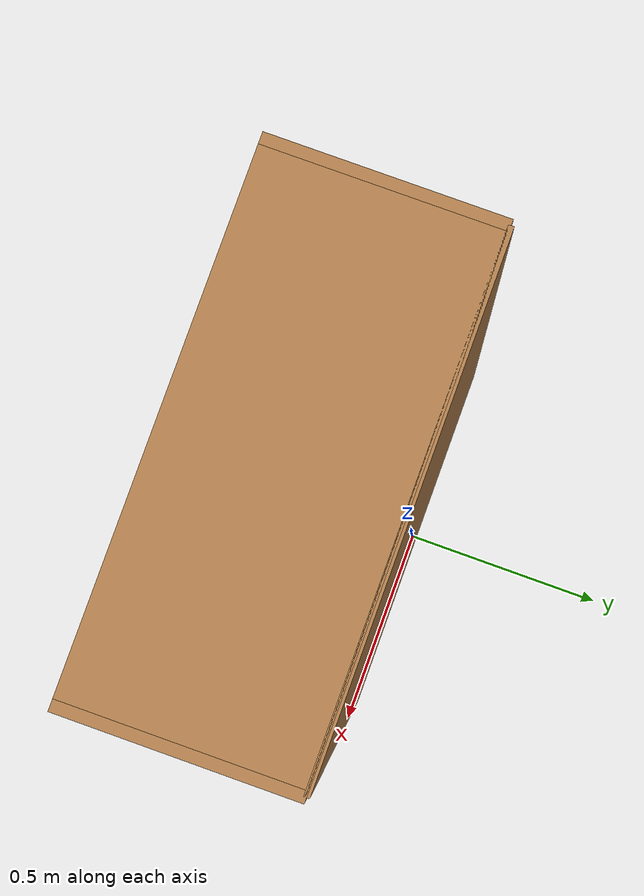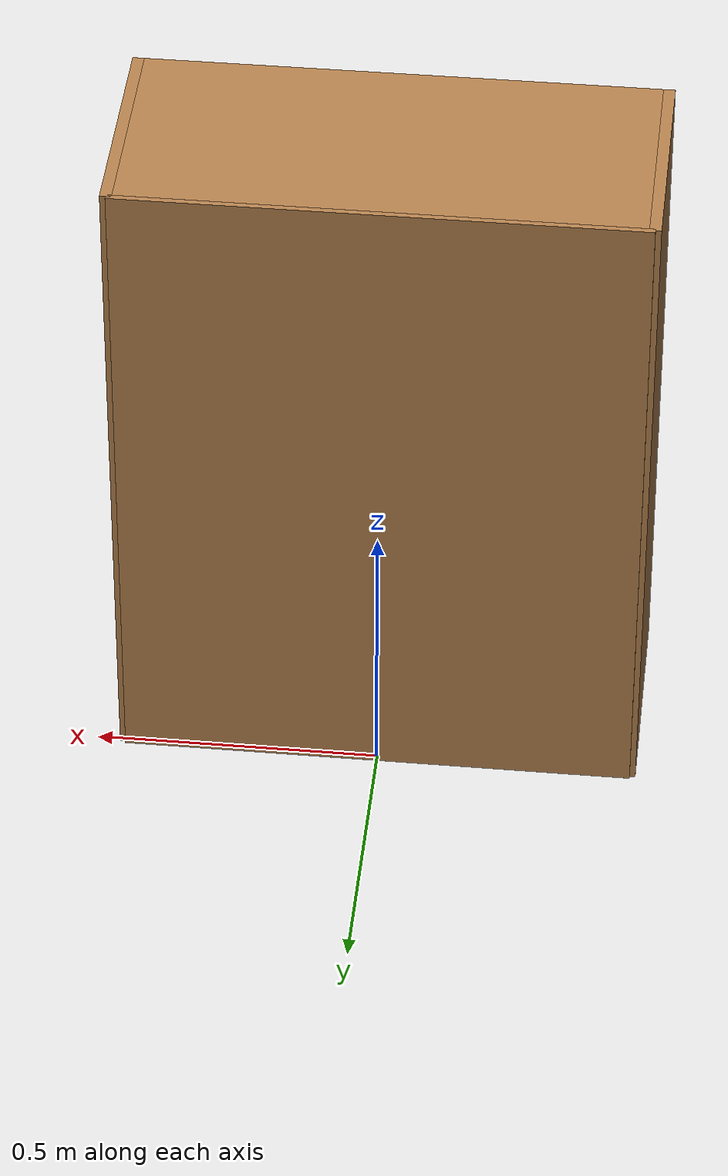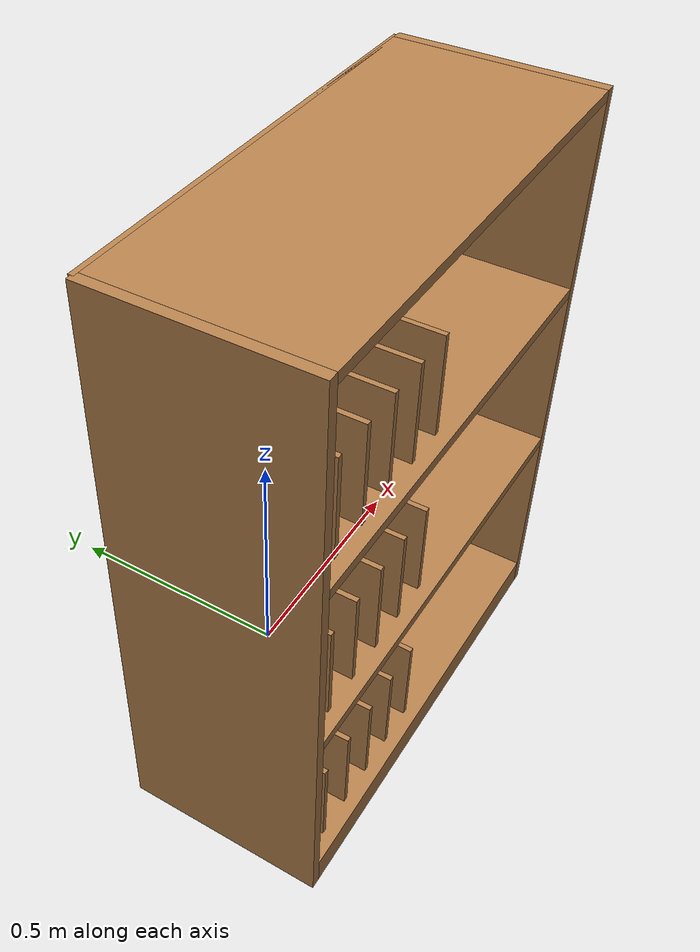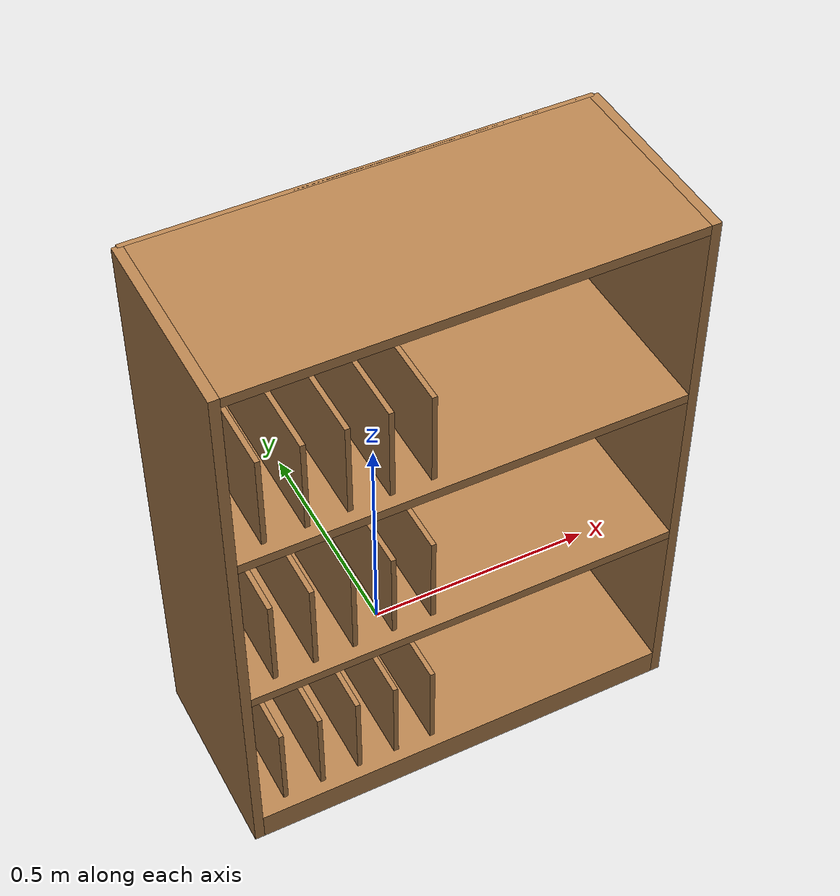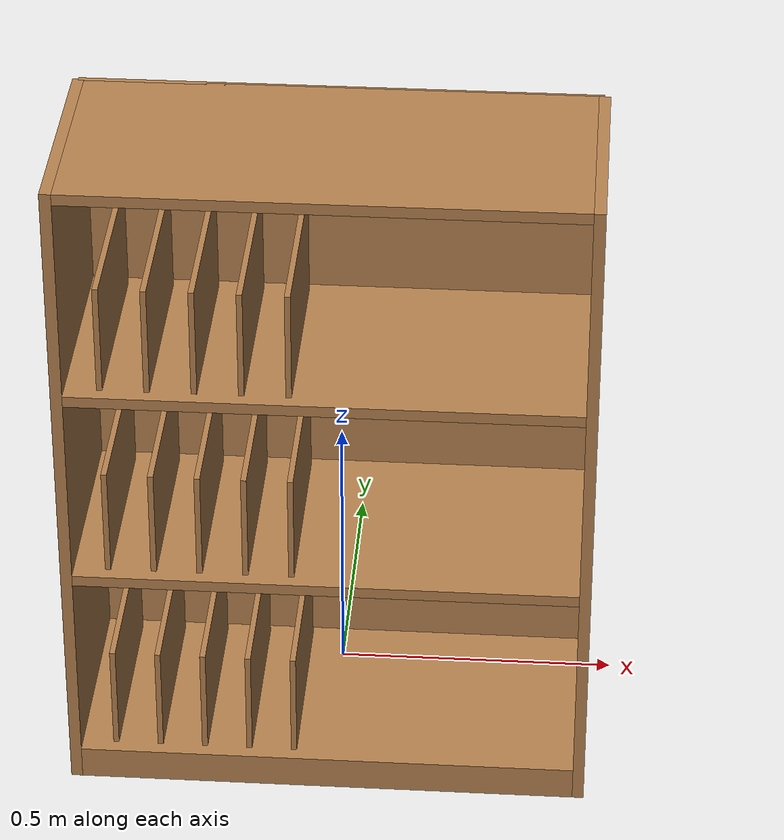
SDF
<sdf version="1.7">
 <model name="bookshelf">
  <link name="link">
   <inertial><mass>1</mass></inertial>
   <visual name="visual1">
    <pose>0 0.005 0.6 0 -0 0</pose>
    <geometry><box><size>0.9 0.01 1.2</size></box></geometry>
    <material>
     <script><uri>file://media/materials/scripts/gazebo.material</uri><name>Gazebo/Wood</name></script>
     <shader type="pixel"/>
    </material>
   </visual>
   <visual name="visual7">
    <pose>0 -0.195 0.8 0 -0 0</pose>
    <geometry><box><size>0.88 0.4 0.02</size></box></geometry>
    <material>
     <script><uri>file://media/materials/scripts/gazebo.material</uri><name>Gazebo/Wood</name></script>
     <shader type="pixel"/>
    </material>
   </visual>
   <visual name="visual5">
    <pose>0 -0.195 1.19 0 -0 0</pose>
    <geometry><box><size>0.88 0.4 0.02</size></box></geometry>
    <material>
     <script><uri>file://media/materials/scripts/gazebo.material</uri><name>Gazebo/Wood</name></script>
     <shader type="pixel"/>
    </material>
   </visual>
   <visual name="visual6">
    <pose>0 -0.195 0.43 0 -0 0</pose>
    <geometry><box><size>0.88 0.4 0.02</size></box></geometry>
    <material>
     <script><uri>file://media/materials/scripts/gazebo.material</uri><name>Gazebo/Wood</name></script>
     <shader type="pixel"/>
    </material>
   </visual>
   <visual name="visual3">
    <pose>-0.45 -0.195 0.6 0 -0 0</pose>
    <geometry><box><size>0.02 0.4 1.2</size></box></geometry>
    <material>
     <script><uri>file://media/materials/scripts/gazebo.material</uri><name>Gazebo/Wood</name></script>
     <shader type="pixel"/>
    </material>
   </visual>
   <visual name="visual2">
    <pose>0.45 -0.195 0.6 0 -0 0</pose>
    <geometry><box><size>0.02 0.4 1.2</size></box></geometry>
    <material>
     <script><uri>file://media/materials/scripts/gazebo.material</uri><name>Gazebo/Wood</name></script>
     <shader type="pixel"/>
    </material>
   </visual>
   <visual name="visual4">
    <pose>0 -0.195 0.03 0 -0 0</pose>
    <geometry><box><size>0.88 0.4 0.06</size></box></geometry>
    <material>
     <script><uri>file://media/materials/scripts/gazebo.material</uri><name>Gazebo/Wood</name></script>
     <shader type="pixel"/>
    </material>
   </visual>
   <collision name="back">
    <pose>0 0.005 0.6 0 -0 0</pose>
    <geometry><box><size>0.9 0.01 1.2</size></box></geometry>
    <surface>
     <friction>
      <ode><mu>1</mu><mu2>1</mu2><fdir1>0 0 0</fdir1><slip1>0</slip1><slip2>0</slip2></ode>
      <torsional>
       <coefficient>1</coefficient>
       <patch_radius>0</patch_radius>
       <surface_radius>0</surface_radius>
       <use_patch_radius>1</use_patch_radius>
       <ode><slip>0</slip></ode>
      </torsional>
     </friction>
     <bounce><restitution_coefficient>0</restitution_coefficient><threshold>1e+06</threshold></bounce>
     <contact>
      <collide_without_contact>0</collide_without_contact>
      <collide_without_contact_bitmask>1</collide_without_contact_bitmask>
      <collide_bitmask>1</collide_bitmask>
      <ode>
       <soft_cfm>0</soft_cfm>
       <soft_erp>0.2</soft_erp>
       <kp>1e+13</kp>
       <kd>1</kd>
       <max_vel>0.01</max_vel>
       <min_depth>0</min_depth>
      </ode>
      <bullet>
       <split_impulse>1</split_impulse>
       <split_impulse_penetration_threshold>-0.01</split_impulse_penetration_threshold>
       <soft_cfm>0</soft_cfm>
       <soft_erp>0.2</soft_erp>
       <kp>1e+13</kp>
       <kd>1</kd>
      </bullet>
     </contact>
    </surface>
   </collision>
   <collision name="right_side">
    <pose>-0.45 -0.195 0.6 0 -0 0</pose>
    <geometry><box><size>0.02 0.4 1.2</size></box></geometry>
    <surface>
     <friction>
      <ode><mu>1</mu><mu2>1</mu2><fdir1>0 0 0</fdir1><slip1>0</slip1><slip2>0</slip2></ode>
      <torsional>
       <coefficient>1</coefficient>
       <patch_radius>0</patch_radius>
       <surface_radius>0</surface_radius>
       <use_patch_radius>1</use_patch_radius>
       <ode><slip>0</slip></ode>
      </torsional>
     </friction>
     <bounce><restitution_coefficient>0</restitution_coefficient><threshold>1e+06</threshold></bounce>
     <contact>
      <collide_without_contact>0</collide_without_contact>
      <collide_without_contact_bitmask>1</collide_without_contact_bitmask>
      <collide_bitmask>1</collide_bitmask>
      <ode>
       <soft_cfm>0</soft_cfm>
       <soft_erp>0.2</soft_erp>
       <kp>1e+13</kp>
       <kd>1</kd>
       <max_vel>0.01</max_vel>
       <min_depth>0</min_depth>
      </ode>
      <bullet>
       <split_impulse>1</split_impulse>
       <split_impulse_penetration_threshold>-0.01</split_impulse_penetration_threshold>
       <soft_cfm>0</soft_cfm>
       <soft_erp>0.2</soft_erp>
       <kp>1e+13</kp>
       <kd>1</kd>
      </bullet>
     </contact>
    </surface>
   </collision>
   <collision name="left_side">
    <pose>0.45 -0.195 0.6 0 -0 0</pose>
    <geometry><box><size>0.02 0.4 1.2</size></box></geometry>
    <surface>
     <friction>
      <ode><mu>1</mu><mu2>1</mu2><fdir1>0 0 0</fdir1><slip1>0</slip1><slip2>0</slip2></ode>
      <torsional>
       <coefficient>1</coefficient>
       <patch_radius>0</patch_radius>
       <surface_radius>0</surface_radius>
       <use_patch_radius>1</use_patch_radius>
       <ode><slip>0</slip></ode>
      </torsional>
     </friction>
     <bounce><restitution_coefficient>0</restitution_coefficient><threshold>1e+06</threshold></bounce>
     <contact>
      <collide_without_contact>0</collide_without_contact>
      <collide_without_contact_bitmask>1</collide_without_contact_bitmask>
      <collide_bitmask>1</collide_bitmask>
      <ode>
       <soft_cfm>0</soft_cfm>
       <soft_erp>0.2</soft_erp>
       <kp>1e+13</kp>
       <kd>1</kd>
       <max_vel>0.01</max_vel>
       <min_depth>0</min_depth>
      </ode>
      <bullet>
       <split_impulse>1</split_impulse>
       <split_impulse_penetration_threshold>-0.01</split_impulse_penetration_threshold>
       <soft_cfm>0</soft_cfm>
       <soft_erp>0.2</soft_erp>
       <kp>1e+13</kp>
       <kd>1</kd>
      </bullet>
     </contact>
    </surface>
   </collision>
   <collision name="high_shelf">
    <pose>0 -0.195 0.8 0 -0 0</pose>
    <geometry><box><size>0.88 0.4 0.02</size></box></geometry>
    <surface>
     <friction>
      <ode><mu>1</mu><mu2>1</mu2><fdir1>0 0 0</fdir1><slip1>0</slip1><slip2>0</slip2></ode>
      <torsional>
       <coefficient>1</coefficient>
       <patch_radius>0</patch_radius>
       <surface_radius>0</surface_radius>
       <use_patch_radius>1</use_patch_radius>
       <ode><slip>0</slip></ode>
      </torsional>
     </friction>
     <bounce><restitution_coefficient>0</restitution_coefficient><threshold>1e+06</threshold></bounce>
     <contact>
      <collide_without_contact>0</collide_without_contact>
      <collide_without_contact_bitmask>1</collide_without_contact_bitmask>
      <collide_bitmask>1</collide_bitmask>
      <ode>
       <soft_cfm>0</soft_cfm>
       <soft_erp>0.2</soft_erp>
       <kp>1e+13</kp>
       <kd>1</kd>
       <max_vel>0.01</max_vel>
       <min_depth>0</min_depth>
      </ode>
      <bullet>
       <split_impulse>1</split_impulse>
       <split_impulse_penetration_threshold>-0.01</split_impulse_penetration_threshold>
       <soft_cfm>0</soft_cfm>
       <soft_erp>0.2</soft_erp>
       <kp>1e+13</kp>
       <kd>1</kd>
      </bullet>
     </contact>
    </surface>
   </collision>
   <collision name="bottom">
    <pose>0 -0.195 0.03 0 -0 0</pose>
    <geometry><box><size>0.88 0.4 0.06</size></box></geometry>
    <surface>
     <friction>
      <ode><mu>1</mu><mu2>1</mu2><fdir1>0 0 0</fdir1><slip1>0</slip1><slip2>0</slip2></ode>
      <torsional>
       <coefficient>1</coefficient>
       <patch_radius>0</patch_radius>
       <surface_radius>0</surface_radius>
       <use_patch_radius>1</use_patch_radius>
       <ode><slip>0</slip></ode>
      </torsional>
     </friction>
     <bounce><restitution_coefficient>0</restitution_coefficient><threshold>1e+06</threshold></bounce>
     <contact>
      <collide_without_contact>0</collide_without_contact>
      <collide_without_contact_bitmask>1</collide_without_contact_bitmask>
      <collide_bitmask>1</collide_bitmask>
      <ode>
       <soft_cfm>0</soft_cfm>
       <soft_erp>0.2</soft_erp>
       <kp>1e+13</kp>
       <kd>1</kd>
       <max_vel>0.01</max_vel>
       <min_depth>0</min_depth>
      </ode>
      <bullet>
       <split_impulse>1</split_impulse>
       <split_impulse_penetration_threshold>-0.01</split_impulse_penetration_threshold>
       <soft_cfm>0</soft_cfm>
       <soft_erp>0.2</soft_erp>
       <kp>1e+13</kp>
       <kd>1</kd>
      </bullet>
     </contact>
    </surface>
   </collision>
   <collision name="top">
    <pose>0 -0.195 1.19 0 -0 0</pose>
    <geometry><box><size>0.88 0.4 0.02</size></box></geometry>
    <surface>
     <friction>
      <ode><mu>1</mu><mu2>1</mu2><fdir1>0 0 0</fdir1><slip1>0</slip1><slip2>0</slip2></ode>
      <torsional>
       <coefficient>1</coefficient>
       <patch_radius>0</patch_radius>
       <surface_radius>0</surface_radius>
       <use_patch_radius>1</use_patch_radius>
       <ode><slip>0</slip></ode>
      </torsional>
     </friction>
     <bounce><restitution_coefficient>0</restitution_coefficient><threshold>1e+06</threshold></bounce>
     <contact>
      <collide_without_contact>0</collide_without_contact>
      <collide_without_contact_bitmask>1</collide_without_contact_bitmask>
      <collide_bitmask>1</collide_bitmask>
      <ode>
       <soft_cfm>0</soft_cfm>
       <soft_erp>0.2</soft_erp>
       <kp>1e+13</kp>
       <kd>1</kd>
       <max_vel>0.01</max_vel>
       <min_depth>0</min_depth>
      </ode>
      <bullet>
       <split_impulse>1</split_impulse>
       <split_impulse_penetration_threshold>-0.01</split_impulse_penetration_threshold>
       <soft_cfm>0</soft_cfm>
       <soft_erp>0.2</soft_erp>
       <kp>1e+13</kp>
       <kd>1</kd>
      </bullet>
     </contact>
    </surface>
   </collision>
   <collision name="low_shelf">
    <pose>0 -0.195 0.43 0 -0 0</pose>
    <geometry><box><size>0.88 0.4 0.02</size></box></geometry>
    <surface>
     <friction>
      <ode><mu>1</mu><mu2>1</mu2><fdir1>0 0 0</fdir1><slip1>0</slip1><slip2>0</slip2></ode>
      <torsional>
       <coefficient>1</coefficient>
       <patch_radius>0</patch_radius>
       <surface_radius>0</surface_radius>
       <use_patch_radius>1</use_patch_radius>
       <ode><slip>0</slip></ode>
      </torsional>
     </friction>
     <bounce><restitution_coefficient>0</restitution_coefficient><threshold>1e+06</threshold></bounce>
     <contact>
      <collide_without_contact>0</collide_without_contact>
      <collide_without_contact_bitmask>1</collide_without_contact_bitmask>
      <collide_bitmask>1</collide_bitmask>
      <ode>
       <soft_cfm>0</soft_cfm>
       <soft_erp>0.2</soft_erp>
       <kp>1e+13</kp>
       <kd>1</kd>
       <max_vel>0.01</max_vel>
       <min_depth>0</min_depth>
      </ode>
      <bullet>
       <split_impulse>1</split_impulse>
       <split_impulse_penetration_threshold>-0.01</split_impulse_penetration_threshold>
       <soft_cfm>0</soft_cfm>
       <soft_erp>0.2</soft_erp>
       <kp>1e+13</kp>
       <kd>1</kd>
      </bullet>
     </contact>
    </surface>
   </collision>
  </link>
  <link name="link_1">
   <inertial>
    <mass>1</mass>
    <inertia>
     <ixx>0.166667</ixx>
     <ixy>0</ixy>
     <ixz>0</ixz>
     <iyy>0.166667</iyy>
     <iyz>0</iyz>
     <izz>0.166667</izz>
    </inertia>
   </inertial>
   <pose>-0.38 -0.195 0.907998 0 0 -1.57</pose>
   <visual name="visual">
    <geometry><box><size>0.35 0.01 0.2</size></box></geometry>
    <material>
     <script><uri>file://media/materials/scripts/gazebo.material</uri><name>Gazebo/Wood</name></script>
     <shader type="pixel"/>
    </material>
   </visual>
   <visual name="ModelPreview_3::link_1::visual_1">
    <geometry><box><size>0.35 0.01 0.2</size></box></geometry>
    <material>
     <lighting>1</lighting>
     <script><uri>file://media/materials/scripts/gazebo.material</uri><name>Gazebo/Grey</name></script>
     <shader type="pixel"><normal_map>__default__</normal_map></shader>
     <ambient>0.3 0.3 0.3 1</ambient>
     <diffuse>0.7 0.7 0.7 1</diffuse>
     <specular>0.01 0.01 0.01 1</specular>
     <emissive>0 0 0 1</emissive>
    </material>
   </visual>
   <collision name="collision">
    <geometry><box><size>0.35 0.01 0.2</size></box></geometry>
    <surface>
     <friction>
      <ode><mu>1</mu><mu2>1</mu2><fdir1>0 0 0</fdir1><slip1>0</slip1><slip2>0</slip2></ode>
      <torsional>
       <coefficient>1</coefficient>
       <patch_radius>0</patch_radius>
       <surface_radius>0</surface_radius>
       <use_patch_radius>1</use_patch_radius>
       <ode><slip>0</slip></ode>
      </torsional>
     </friction>
     <bounce><restitution_coefficient>0</restitution_coefficient><threshold>1e+06</threshold></bounce>
     <contact>
      <collide_without_contact>0</collide_without_contact>
      <collide_without_contact_bitmask>1</collide_without_contact_bitmask>
      <collide_bitmask>1</collide_bitmask>
      <ode>
       <soft_cfm>0</soft_cfm>
       <soft_erp>0.2</soft_erp>
       <kp>1e+13</kp>
       <kd>1</kd>
       <max_vel>0.01</max_vel>
       <min_depth>0</min_depth>
      </ode>
      <bullet>
       <split_impulse>1</split_impulse>
       <split_impulse_penetration_threshold>-0.01</split_impulse_penetration_threshold>
       <soft_cfm>0</soft_cfm>
       <soft_erp>0.2</soft_erp>
       <kp>1e+13</kp>
       <kd>1</kd>
      </bullet>
     </contact>
    </surface>
   </collision>
  </link>
  <link name="link_2">
   <inertial>
    <mass>1</mass>
    <inertia>
     <ixx>0.166667</ixx>
     <ixy>0</ixy>
     <ixz>0</ixz>
     <iyy>0.166667</iyy>
     <iyz>0</iyz>
     <izz>0.166667</izz>
    </inertia>
   </inertial>
   <pose>-0.3 -0.195 0.907998 0 0 -1.57</pose>
   <visual name="visual">
    <geometry><box><size>0.35 0.01 0.2</size></box></geometry>
    <material>
     <script><uri>file://media/materials/scripts/gazebo.material</uri><name>Gazebo/Wood</name></script>
     <shader type="pixel"/>
    </material>
   </visual>
   <visual name="ModelPreview_3::link_1::visual_1">
    <geometry><box><size>0.35 0.01 0.2</size></box></geometry>
    <material>
     <lighting>1</lighting>
     <script><uri>file://media/materials/scripts/gazebo.material</uri><name>Gazebo/Grey</name></script>
     <shader type="pixel"><normal_map>__default__</normal_map></shader>
     <ambient>0.3 0.3 0.3 1</ambient>
     <diffuse>0.7 0.7 0.7 1</diffuse>
     <specular>0.01 0.01 0.01 1</specular>
     <emissive>0 0 0 1</emissive>
    </material>
   </visual>
   <collision name="collision">
    <geometry><box><size>0.35 0.01 0.2</size></box></geometry>
    <surface>
     <friction>
      <ode><mu>1</mu><mu2>1</mu2><fdir1>0 0 0</fdir1><slip1>0</slip1><slip2>0</slip2></ode>
      <torsional>
       <coefficient>1</coefficient>
       <patch_radius>0</patch_radius>
       <surface_radius>0</surface_radius>
       <use_patch_radius>1</use_patch_radius>
       <ode><slip>0</slip></ode>
      </torsional>
     </friction>
     <bounce><restitution_coefficient>0</restitution_coefficient><threshold>1e+06</threshold></bounce>
     <contact>
      <collide_without_contact>0</collide_without_contact>
      <collide_without_contact_bitmask>1</collide_without_contact_bitmask>
      <collide_bitmask>1</collide_bitmask>
      <ode>
       <soft_cfm>0</soft_cfm>
       <soft_erp>0.2</soft_erp>
       <kp>1e+13</kp>
       <kd>1</kd>
       <max_vel>0.01</max_vel>
       <min_depth>0</min_depth>
      </ode>
      <bullet>
       <split_impulse>1</split_impulse>
       <split_impulse_penetration_threshold>-0.01</split_impulse_penetration_threshold>
       <soft_cfm>0</soft_cfm>
       <soft_erp>0.2</soft_erp>
       <kp>1e+13</kp>
       <kd>1</kd>
      </bullet>
     </contact>
    </surface>
   </collision>
  </link>
  <link name="link_3">
   <inertial>
    <mass>1</mass>
    <inertia>
     <ixx>0.166667</ixx>
     <ixy>0</ixy>
     <ixz>0</ixz>
     <iyy>0.166667</iyy>
     <iyz>0</iyz>
     <izz>0.166667</izz>
    </inertia>
   </inertial>
   <pose>-0.22 -0.195 0.907998 0 0 -1.57</pose>
   <visual name="visual">
    <geometry><box><size>0.35 0.01 0.2</size></box></geometry>
    <material>
     <script><uri>file://media/materials/scripts/gazebo.material</uri><name>Gazebo/Wood</name></script>
     <shader type="pixel"/>
    </material>
   </visual>
   <visual name="ModelPreview_3::link_1::visual_1">
    <geometry><box><size>0.35 0.01 0.2</size></box></geometry>
    <material>
     <lighting>1</lighting>
     <script><uri>file://media/materials/scripts/gazebo.material</uri><name>Gazebo/Grey</name></script>
     <shader type="pixel"><normal_map>__default__</normal_map></shader>
     <ambient>0.3 0.3 0.3 1</ambient>
     <diffuse>0.7 0.7 0.7 1</diffuse>
     <specular>0.01 0.01 0.01 1</specular>
     <emissive>0 0 0 1</emissive>
    </material>
   </visual>
   <collision name="collision">
    <geometry><box><size>0.35 0.01 0.2</size></box></geometry>
    <surface>
     <friction>
      <ode><mu>1</mu><mu2>1</mu2><fdir1>0 0 0</fdir1><slip1>0</slip1><slip2>0</slip2></ode>
      <torsional>
       <coefficient>1</coefficient>
       <patch_radius>0</patch_radius>
       <surface_radius>0</surface_radius>
       <use_patch_radius>1</use_patch_radius>
       <ode><slip>0</slip></ode>
      </torsional>
     </friction>
     <bounce><restitution_coefficient>0</restitution_coefficient><threshold>1e+06</threshold></bounce>
     <contact>
      <collide_without_contact>0</collide_without_contact>
      <collide_without_contact_bitmask>1</collide_without_contact_bitmask>
      <collide_bitmask>1</collide_bitmask>
      <ode>
       <soft_cfm>0</soft_cfm>
       <soft_erp>0.2</soft_erp>
       <kp>1e+13</kp>
       <kd>1</kd>
       <max_vel>0.01</max_vel>
       <min_depth>0</min_depth>
      </ode>
      <bullet>
       <split_impulse>1</split_impulse>
       <split_impulse_penetration_threshold>-0.01</split_impulse_penetration_threshold>
       <soft_cfm>0</soft_cfm>
       <soft_erp>0.2</soft_erp>
       <kp>1e+13</kp>
       <kd>1</kd>
      </bullet>
     </contact>
    </surface>
   </collision>
  </link>
  <link name="link_4">
   <inertial>
    <mass>1</mass>
    <inertia>
     <ixx>0.166667</ixx>
     <ixy>0</ixy>
     <ixz>0</ixz>
     <iyy>0.166667</iyy>
     <iyz>0</iyz>
     <izz>0.166667</izz>
    </inertia>
   </inertial>
   <pose>-0.14 -0.195 0.907998 0 0 -1.57</pose>
   <visual name="visual">
    <geometry><box><size>0.35 0.01 0.2</size></box></geometry>
    <material>
     <script><uri>file://media/materials/scripts/gazebo.material</uri><name>Gazebo/Wood</name></script>
     <shader type="pixel"/>
    </material>
   </visual>
   <visual name="ModelPreview_3::link_1::visual_1">
    <geometry><box><size>0.35 0.01 0.2</size></box></geometry>
    <material>
     <lighting>1</lighting>
     <script><uri>file://media/materials/scripts/gazebo.material</uri><name>Gazebo/Grey</name></script>
     <shader type="pixel"><normal_map>__default__</normal_map></shader>
     <ambient>0.3 0.3 0.3 1</ambient>
     <diffuse>0.7 0.7 0.7 1</diffuse>
     <specular>0.01 0.01 0.01 1</specular>
     <emissive>0 0 0 1</emissive>
    </material>
   </visual>
   <collision name="collision">
    <geometry><box><size>0.35 0.01 0.2</size></box></geometry>
    <surface>
     <friction>
      <ode><mu>1</mu><mu2>1</mu2><fdir1>0 0 0</fdir1><slip1>0</slip1><slip2>0</slip2></ode>
      <torsional>
       <coefficient>1</coefficient>
       <patch_radius>0</patch_radius>
       <surface_radius>0</surface_radius>
       <use_patch_radius>1</use_patch_radius>
       <ode><slip>0</slip></ode>
      </torsional>
     </friction>
     <bounce><restitution_coefficient>0</restitution_coefficient><threshold>1e+06</threshold></bounce>
     <contact>
      <collide_without_contact>0</collide_without_contact>
      <collide_without_contact_bitmask>1</collide_without_contact_bitmask>
      <collide_bitmask>1</collide_bitmask>
      <ode>
       <soft_cfm>0</soft_cfm>
       <soft_erp>0.2</soft_erp>
       <kp>1e+13</kp>
       <kd>1</kd>
       <max_vel>0.01</max_vel>
       <min_depth>0</min_depth>
      </ode>
      <bullet>
       <split_impulse>1</split_impulse>
       <split_impulse_penetration_threshold>-0.01</split_impulse_penetration_threshold>
       <soft_cfm>0</soft_cfm>
       <soft_erp>0.2</soft_erp>
       <kp>1e+13</kp>
       <kd>1</kd>
      </bullet>
     </contact>
    </surface>
   </collision>
  </link>
  <link name="link_5">
   <inertial>
    <mass>1</mass>
    <inertia>
     <ixx>0.166667</ixx>
     <ixy>0</ixy>
     <ixz>0</ixz>
     <iyy>0.166667</iyy>
     <iyz>0</iyz>
     <izz>0.166667</izz>
    </inertia>
   </inertial>
   <pose>-0.06 -0.195 0.907998 0 0 -1.57</pose>
   <visual name="visual">
    <geometry><box><size>0.35 0.01 0.2</size></box></geometry>
    <material>
     <script><uri>file://media/materials/scripts/gazebo.material</uri><name>Gazebo/Wood</name></script>
     <shader type="pixel"/>
    </material>
   </visual>
   <visual name="ModelPreview_3::link_1::visual_1">
    <geometry><box><size>0.35 0.01 0.2</size></box></geometry>
    <material>
     <lighting>1</lighting>
     <script><uri>file://media/materials/scripts/gazebo.material</uri><name>Gazebo/Grey</name></script>
     <shader type="pixel"><normal_map>__default__</normal_map></shader>
     <ambient>0.3 0.3 0.3 1</ambient>
     <diffuse>0.7 0.7 0.7 1</diffuse>
     <specular>0.01 0.01 0.01 1</specular>
     <emissive>0 0 0 1</emissive>
    </material>
   </visual>
   <collision name="collision">
    <geometry><box><size>0.35 0.01 0.2</size></box></geometry>
    <surface>
     <friction>
      <ode><mu>1</mu><mu2>1</mu2><fdir1>0 0 0</fdir1><slip1>0</slip1><slip2>0</slip2></ode>
      <torsional>
       <coefficient>1</coefficient>
       <patch_radius>0</patch_radius>
       <surface_radius>0</surface_radius>
       <use_patch_radius>1</use_patch_radius>
       <ode><slip>0</slip></ode>
      </torsional>
     </friction>
     <bounce><restitution_coefficient>0</restitution_coefficient><threshold>1e+06</threshold></bounce>
     <contact>
      <collide_without_contact>0</collide_without_contact>
      <collide_without_contact_bitmask>1</collide_without_contact_bitmask>
      <collide_bitmask>1</collide_bitmask>
      <ode>
       <soft_cfm>0</soft_cfm>
       <soft_erp>0.2</soft_erp>
       <kp>1e+13</kp>
       <kd>1</kd>
       <max_vel>0.01</max_vel>
       <min_depth>0</min_depth>
      </ode>
      <bullet>
       <split_impulse>1</split_impulse>
       <split_impulse_penetration_threshold>-0.01</split_impulse_penetration_threshold>
       <soft_cfm>0</soft_cfm>
       <soft_erp>0.2</soft_erp>
       <kp>1e+13</kp>
       <kd>1</kd>
      </bullet>
     </contact>
    </surface>
   </collision>
  </link>
  <link name="link_2_1">
   <inertial>
    <mass>1</mass>
    <inertia>
     <ixx>0.166667</ixx>
     <ixy>0</ixy>
     <ixz>0</ixz>
     <iyy>0.166667</iyy>
     <iyz>0</iyz>
     <izz>0.166667</izz>
    </inertia>
   </inertial>
   <pose>-0.38 -0.195 0.5379 0 0 -1.57</pose>
   <visual name="visual">
    <geometry><box><size>0.35 0.01 0.2</size></box></geometry>
    <material>
     <script><uri>file://media/materials/scripts/gazebo.material</uri><name>Gazebo/Wood</name></script>
     <shader type="pixel"/>
    </material>
   </visual>
   <visual name="ModelPreview_3::link_1::visual_1">
    <geometry><box><size>0.35 0.01 0.2</size></box></geometry>
    <material>
     <lighting>1</lighting>
     <script><uri>file://media/materials/scripts/gazebo.material</uri><name>Gazebo/Grey</name></script>
     <shader type="pixel"><normal_map>__default__</normal_map></shader>
     <ambient>0.3 0.3 0.3 1</ambient>
     <diffuse>0.7 0.7 0.7 1</diffuse>
     <specular>0.01 0.01 0.01 1</specular>
     <emissive>0 0 0 1</emissive>
    </material>
   </visual>
   <collision name="collision">
    <geometry><box><size>0.35 0.01 0.2</size></box></geometry>
    <surface>
     <friction>
      <ode><mu>1</mu><mu2>1</mu2><fdir1>0 0 0</fdir1><slip1>0</slip1><slip2>0</slip2></ode>
      <torsional>
       <coefficient>1</coefficient>
       <patch_radius>0</patch_radius>
       <surface_radius>0</surface_radius>
       <use_patch_radius>1</use_patch_radius>
       <ode><slip>0</slip></ode>
      </torsional>
     </friction>
     <bounce><restitution_coefficient>0</restitution_coefficient><threshold>1e+06</threshold></bounce>
     <contact>
      <collide_without_contact>0</collide_without_contact>
      <collide_without_contact_bitmask>1</collide_without_contact_bitmask>
      <collide_bitmask>1</collide_bitmask>
      <ode>
       <soft_cfm>0</soft_cfm>
       <soft_erp>0.2</soft_erp>
       <kp>1e+13</kp>
       <kd>1</kd>
       <max_vel>0.01</max_vel>
       <min_depth>0</min_depth>
      </ode>
      <bullet>
       <split_impulse>1</split_impulse>
       <split_impulse_penetration_threshold>-0.01</split_impulse_penetration_threshold>
       <soft_cfm>0</soft_cfm>
       <soft_erp>0.2</soft_erp>
       <kp>1e+13</kp>
       <kd>1</kd>
      </bullet>
     </contact>
    </surface>
   </collision>
  </link>
  <link name="link_2_2">
   <inertial>
    <mass>1</mass>
    <inertia>
     <ixx>0.166667</ixx>
     <ixy>0</ixy>
     <ixz>0</ixz>
     <iyy>0.166667</iyy>
     <iyz>0</iyz>
     <izz>0.166667</izz>
    </inertia>
   </inertial>
   <pose>-0.3 -0.195 0.5379 0 0 -1.57</pose>
   <visual name="visual">
    <geometry><box><size>0.35 0.01 0.2</size></box></geometry>
    <material>
     <script><uri>file://media/materials/scripts/gazebo.material</uri><name>Gazebo/Wood</name></script>
     <shader type="pixel"/>
    </material>
   </visual>
   <visual name="ModelPreview_3::link_1::visual_1">
    <geometry><box><size>0.35 0.01 0.2</size></box></geometry>
    <material>
     <lighting>1</lighting>
     <script><uri>file://media/materials/scripts/gazebo.material</uri><name>Gazebo/Grey</name></script>
     <shader type="pixel"><normal_map>__default__</normal_map></shader>
     <ambient>0.3 0.3 0.3 1</ambient>
     <diffuse>0.7 0.7 0.7 1</diffuse>
     <specular>0.01 0.01 0.01 1</specular>
     <emissive>0 0 0 1</emissive>
    </material>
   </visual>
   <collision name="collision">
    <geometry><box><size>0.35 0.01 0.2</size></box></geometry>
    <surface>
     <friction>
      <ode><mu>1</mu><mu2>1</mu2><fdir1>0 0 0</fdir1><slip1>0</slip1><slip2>0</slip2></ode>
      <torsional>
       <coefficient>1</coefficient>
       <patch_radius>0</patch_radius>
       <surface_radius>0</surface_radius>
       <use_patch_radius>1</use_patch_radius>
       <ode><slip>0</slip></ode>
      </torsional>
     </friction>
     <bounce><restitution_coefficient>0</restitution_coefficient><threshold>1e+06</threshold></bounce>
     <contact>
      <collide_without_contact>0</collide_without_contact>
      <collide_without_contact_bitmask>1</collide_without_contact_bitmask>
      <collide_bitmask>1</collide_bitmask>
      <ode>
       <soft_cfm>0</soft_cfm>
       <soft_erp>0.2</soft_erp>
       <kp>1e+13</kp>
       <kd>1</kd>
       <max_vel>0.01</max_vel>
       <min_depth>0</min_depth>
      </ode>
      <bullet>
       <split_impulse>1</split_impulse>
       <split_impulse_penetration_threshold>-0.01</split_impulse_penetration_threshold>
       <soft_cfm>0</soft_cfm>
       <soft_erp>0.2</soft_erp>
       <kp>1e+13</kp>
       <kd>1</kd>
      </bullet>
     </contact>
    </surface>
   </collision>
  </link>
  <link name="link_2_3">
   <inertial>
    <mass>1</mass>
    <inertia>
     <ixx>0.166667</ixx>
     <ixy>0</ixy>
     <ixz>0</ixz>
     <iyy>0.166667</iyy>
     <iyz>0</iyz>
     <izz>0.166667</izz>
    </inertia>
   </inertial>
   <pose>-0.22 -0.195 0.5379 0 0 -1.57</pose>
   <visual name="visual">
    <geometry><box><size>0.35 0.01 0.2</size></box></geometry>
    <material>
     <script><uri>file://media/materials/scripts/gazebo.material</uri><name>Gazebo/Wood</name></script>
     <shader type="pixel"/>
    </material>
   </visual>
   <visual name="ModelPreview_3::link_1::visual_1">
    <geometry><box><size>0.35 0.01 0.2</size></box></geometry>
    <material>
     <lighting>1</lighting>
     <script><uri>file://media/materials/scripts/gazebo.material</uri><name>Gazebo/Grey</name></script>
     <shader type="pixel"><normal_map>__default__</normal_map></shader>
     <ambient>0.3 0.3 0.3 1</ambient>
     <diffuse>0.7 0.7 0.7 1</diffuse>
     <specular>0.01 0.01 0.01 1</specular>
     <emissive>0 0 0 1</emissive>
    </material>
   </visual>
   <collision name="collision">
    <geometry><box><size>0.35 0.01 0.2</size></box></geometry>
    <surface>
     <friction>
      <ode><mu>1</mu><mu2>1</mu2><fdir1>0 0 0</fdir1><slip1>0</slip1><slip2>0</slip2></ode>
      <torsional>
       <coefficient>1</coefficient>
       <patch_radius>0</patch_radius>
       <surface_radius>0</surface_radius>
       <use_patch_radius>1</use_patch_radius>
       <ode><slip>0</slip></ode>
      </torsional>
     </friction>
     <bounce><restitution_coefficient>0</restitution_coefficient><threshold>1e+06</threshold></bounce>
     <contact>
      <collide_without_contact>0</collide_without_contact>
      <collide_without_contact_bitmask>1</collide_without_contact_bitmask>
      <collide_bitmask>1</collide_bitmask>
      <ode>
       <soft_cfm>0</soft_cfm>
       <soft_erp>0.2</soft_erp>
       <kp>1e+13</kp>
       <kd>1</kd>
       <max_vel>0.01</max_vel>
       <min_depth>0</min_depth>
      </ode>
      <bullet>
       <split_impulse>1</split_impulse>
       <split_impulse_penetration_threshold>-0.01</split_impulse_penetration_threshold>
       <soft_cfm>0</soft_cfm>
       <soft_erp>0.2</soft_erp>
       <kp>1e+13</kp>
       <kd>1</kd>
      </bullet>
     </contact>
    </surface>
   </collision>
  </link>
  <link name="link_2_4">
   <inertial>
    <mass>1</mass>
    <inertia>
     <ixx>0.166667</ixx>
     <ixy>0</ixy>
     <ixz>0</ixz>
     <iyy>0.166667</iyy>
     <iyz>0</iyz>
     <izz>0.166667</izz>
    </inertia>
   </inertial>
   <pose>-0.14 -0.195 0.5379 0 0 -1.57</pose>
   <visual name="visual">
    <geometry><box><size>0.35 0.01 0.2</size></box></geometry>
    <material>
     <script><uri>file://media/materials/scripts/gazebo.material</uri><name>Gazebo/Wood</name></script>
     <shader type="pixel"/>
    </material>
   </visual>
   <visual name="ModelPreview_3::link_1::visual_1">
    <geometry><box><size>0.35 0.01 0.2</size></box></geometry>
    <material>
     <lighting>1</lighting>
     <script><uri>file://media/materials/scripts/gazebo.material</uri><name>Gazebo/Grey</name></script>
     <shader type="pixel"><normal_map>__default__</normal_map></shader>
     <ambient>0.3 0.3 0.3 1</ambient>
     <diffuse>0.7 0.7 0.7 1</diffuse>
     <specular>0.01 0.01 0.01 1</specular>
     <emissive>0 0 0 1</emissive>
    </material>
   </visual>
   <collision name="collision">
    <geometry><box><size>0.35 0.01 0.2</size></box></geometry>
    <surface>
     <friction>
      <ode><mu>1</mu><mu2>1</mu2><fdir1>0 0 0</fdir1><slip1>0</slip1><slip2>0</slip2></ode>
      <torsional>
       <coefficient>1</coefficient>
       <patch_radius>0</patch_radius>
       <surface_radius>0</surface_radius>
       <use_patch_radius>1</use_patch_radius>
       <ode><slip>0</slip></ode>
      </torsional>
     </friction>
     <bounce><restitution_coefficient>0</restitution_coefficient><threshold>1e+06</threshold></bounce>
     <contact>
      <collide_without_contact>0</collide_without_contact>
      <collide_without_contact_bitmask>1</collide_without_contact_bitmask>
      <collide_bitmask>1</collide_bitmask>
      <ode>
       <soft_cfm>0</soft_cfm>
       <soft_erp>0.2</soft_erp>
       <kp>1e+13</kp>
       <kd>1</kd>
       <max_vel>0.01</max_vel>
       <min_depth>0</min_depth>
      </ode>
      <bullet>
       <split_impulse>1</split_impulse>
       <split_impulse_penetration_threshold>-0.01</split_impulse_penetration_threshold>
       <soft_cfm>0</soft_cfm>
       <soft_erp>0.2</soft_erp>
       <kp>1e+13</kp>
       <kd>1</kd>
      </bullet>
     </contact>
    </surface>
   </collision>
  </link>
  <link name="link_2_5">
   <inertial>
    <mass>1</mass>
    <inertia>
     <ixx>0.166667</ixx>
     <ixy>0</ixy>
     <ixz>0</ixz>
     <iyy>0.166667</iyy>
     <iyz>0</iyz>
     <izz>0.166667</izz>
    </inertia>
   </inertial>
   <pose>-0.06 -0.195 0.5379 0 0 -1.57</pose>
   <visual name="visual">
    <geometry><box><size>0.35 0.01 0.2</size></box></geometry>
    <material>
     <script><uri>file://media/materials/scripts/gazebo.material</uri><name>Gazebo/Wood</name></script>
     <shader type="pixel"/>
    </material>
   </visual>
   <visual name="ModelPreview_3::link_1::visual_1">
    <geometry><box><size>0.35 0.01 0.2</size></box></geometry>
    <material>
     <lighting>1</lighting>
     <script><uri>file://media/materials/scripts/gazebo.material</uri><name>Gazebo/Grey</name></script>
     <shader type="pixel"><normal_map>__default__</normal_map></shader>
     <ambient>0.3 0.3 0.3 1</ambient>
     <diffuse>0.7 0.7 0.7 1</diffuse>
     <specular>0.01 0.01 0.01 1</specular>
     <emissive>0 0 0 1</emissive>
    </material>
   </visual>
   <collision name="collision">
    <geometry><box><size>0.35 0.01 0.2</size></box></geometry>
    <surface>
     <friction>
      <ode><mu>1</mu><mu2>1</mu2><fdir1>0 0 0</fdir1><slip1>0</slip1><slip2>0</slip2></ode>
      <torsional>
       <coefficient>1</coefficient>
       <patch_radius>0</patch_radius>
       <surface_radius>0</surface_radius>
       <use_patch_radius>1</use_patch_radius>
       <ode><slip>0</slip></ode>
      </torsional>
     </friction>
     <bounce><restitution_coefficient>0</restitution_coefficient><threshold>1e+06</threshold></bounce>
     <contact>
      <collide_without_contact>0</collide_without_contact>
      <collide_without_contact_bitmask>1</collide_without_contact_bitmask>
      <collide_bitmask>1</collide_bitmask>
      <ode>
       <soft_cfm>0</soft_cfm>
       <soft_erp>0.2</soft_erp>
       <kp>1e+13</kp>
       <kd>1</kd>
       <max_vel>0.01</max_vel>
       <min_depth>0</min_depth>
      </ode>
      <bullet>
       <split_impulse>1</split_impulse>
       <split_impulse_penetration_threshold>-0.01</split_impulse_penetration_threshold>
       <soft_cfm>0</soft_cfm>
       <soft_erp>0.2</soft_erp>
       <kp>1e+13</kp>
       <kd>1</kd>
      </bullet>
     </contact>
    </surface>
   </collision>
  </link>
  <link name="link_3_1">
   <inertial>
    <mass>1</mass>
    <inertia>
     <ixx>0.166667</ixx>
     <ixy>0</ixy>
     <ixz>0</ixz>
     <iyy>0.166667</iyy>
     <iyz>0</iyz>
     <izz>0.166667</izz>
    </inertia>
   </inertial>
   <pose>-0.38 -0.195 0.158 0 0 -1.57</pose>
   <visual name="visual">
    <geometry><box><size>0.35 0.01 0.2</size></box></geometry>
    <material>
     <script><uri>file://media/materials/scripts/gazebo.material</uri><name>Gazebo/Wood</name></script>
     <shader type="pixel"/>
    </material>
   </visual>
   <visual name="ModelPreview_3::link_1::visual_1">
    <geometry><box><size>0.35 0.01 0.2</size></box></geometry>
    <material>
     <lighting>1</lighting>
     <script><uri>file://media/materials/scripts/gazebo.material</uri><name>Gazebo/Grey</name></script>
     <shader type="pixel"><normal_map>__default__</normal_map></shader>
     <ambient>0.3 0.3 0.3 1</ambient>
     <diffuse>0.7 0.7 0.7 1</diffuse>
     <specular>0.01 0.01 0.01 1</specular>
     <emissive>0 0 0 1</emissive>
    </material>
   </visual>
   <collision name="collision">
    <geometry><box><size>0.35 0.01 0.2</size></box></geometry>
    <surface>
     <friction>
      <ode><mu>1</mu><mu2>1</mu2><fdir1>0 0 0</fdir1><slip1>0</slip1><slip2>0</slip2></ode>
      <torsional>
       <coefficient>1</coefficient>
       <patch_radius>0</patch_radius>
       <surface_radius>0</surface_radius>
       <use_patch_radius>1</use_patch_radius>
       <ode><slip>0</slip></ode>
      </torsional>
     </friction>
     <bounce><restitution_coefficient>0</restitution_coefficient><threshold>1e+06</threshold></bounce>
     <contact>
      <collide_without_contact>0</collide_without_contact>
      <collide_without_contact_bitmask>1</collide_without_contact_bitmask>
      <collide_bitmask>1</collide_bitmask>
      <ode>
       <soft_cfm>0</soft_cfm>
       <soft_erp>0.2</soft_erp>
       <kp>1e+13</kp>
       <kd>1</kd>
       <max_vel>0.01</max_vel>
       <min_depth>0</min_depth>
      </ode>
      <bullet>
       <split_impulse>1</split_impulse>
       <split_impulse_penetration_threshold>-0.01</split_impulse_penetration_threshold>
       <soft_cfm>0</soft_cfm>
       <soft_erp>0.2</soft_erp>
       <kp>1e+13</kp>
       <kd>1</kd>
      </bullet>
     </contact>
    </surface>
   </collision>
  </link>
  <link name="link_3_2">
   <inertial>
    <mass>1</mass>
    <inertia>
     <ixx>0.166667</ixx>
     <ixy>0</ixy>
     <ixz>0</ixz>
     <iyy>0.166667</iyy>
     <iyz>0</iyz>
     <izz>0.166667</izz>
    </inertia>
   </inertial>
   <pose>-0.3 -0.195 0.158 0 0 -1.57</pose>
   <visual name="visual">
    <geometry><box><size>0.35 0.01 0.2</size></box></geometry>
    <material>
     <script><uri>file://media/materials/scripts/gazebo.material</uri><name>Gazebo/Wood</name></script>
     <shader type="pixel"/>
    </material>
   </visual>
   <visual name="ModelPreview_3::link_1::visual_1">
    <geometry><box><size>0.35 0.01 0.2</size></box></geometry>
    <material>
     <lighting>1</lighting>
     <script><uri>file://media/materials/scripts/gazebo.material</uri><name>Gazebo/Grey</name></script>
     <shader type="pixel"><normal_map>__default__</normal_map></shader>
     <ambient>0.3 0.3 0.3 1</ambient>
     <diffuse>0.7 0.7 0.7 1</diffuse>
     <specular>0.01 0.01 0.01 1</specular>
     <emissive>0 0 0 1</emissive>
    </material>
   </visual>
   <collision name="collision">
    <geometry><box><size>0.35 0.01 0.2</size></box></geometry>
    <surface>
     <friction>
      <ode><mu>1</mu><mu2>1</mu2><fdir1>0 0 0</fdir1><slip1>0</slip1><slip2>0</slip2></ode>
      <torsional>
       <coefficient>1</coefficient>
       <patch_radius>0</patch_radius>
       <surface_radius>0</surface_radius>
       <use_patch_radius>1</use_patch_radius>
       <ode><slip>0</slip></ode>
      </torsional>
     </friction>
     <bounce><restitution_coefficient>0</restitution_coefficient><threshold>1e+06</threshold></bounce>
     <contact>
      <collide_without_contact>0</collide_without_contact>
      <collide_without_contact_bitmask>1</collide_without_contact_bitmask>
      <collide_bitmask>1</collide_bitmask>
      <ode>
       <soft_cfm>0</soft_cfm>
       <soft_erp>0.2</soft_erp>
       <kp>1e+13</kp>
       <kd>1</kd>
       <max_vel>0.01</max_vel>
       <min_depth>0</min_depth>
      </ode>
      <bullet>
       <split_impulse>1</split_impulse>
       <split_impulse_penetration_threshold>-0.01</split_impulse_penetration_threshold>
       <soft_cfm>0</soft_cfm>
       <soft_erp>0.2</soft_erp>
       <kp>1e+13</kp>
       <kd>1</kd>
      </bullet>
     </contact>
    </surface>
   </collision>
  </link>
  <link name="link_3_3">
   <inertial>
    <mass>1</mass>
    <inertia>
     <ixx>0.166667</ixx>
     <ixy>0</ixy>
     <ixz>0</ixz>
     <iyy>0.166667</iyy>
     <iyz>0</iyz>
     <izz>0.166667</izz>
    </inertia>
   </inertial>
   <pose>-0.22 -0.195 0.158 0 0 -1.57</pose>
   <visual name="visual">
    <geometry><box><size>0.35 0.01 0.2</size></box></geometry>
    <material>
     <script><uri>file://media/materials/scripts/gazebo.material</uri><name>Gazebo/Wood</name></script>
     <shader type="pixel"/>
    </material>
   </visual>
   <visual name="ModelPreview_3::link_1::visual_1">
    <geometry><box><size>0.35 0.01 0.2</size></box></geometry>
    <material>
     <lighting>1</lighting>
     <script><uri>file://media/materials/scripts/gazebo.material</uri><name>Gazebo/Grey</name></script>
     <shader type="pixel"><normal_map>__default__</normal_map></shader>
     <ambient>0.3 0.3 0.3 1</ambient>
     <diffuse>0.7 0.7 0.7 1</diffuse>
     <specular>0.01 0.01 0.01 1</specular>
     <emissive>0 0 0 1</emissive>
    </material>
   </visual>
   <collision name="collision">
    <geometry><box><size>0.35 0.01 0.2</size></box></geometry>
    <surface>
     <friction>
      <ode><mu>1</mu><mu2>1</mu2><fdir1>0 0 0</fdir1><slip1>0</slip1><slip2>0</slip2></ode>
      <torsional>
       <coefficient>1</coefficient>
       <patch_radius>0</patch_radius>
       <surface_radius>0</surface_radius>
       <use_patch_radius>1</use_patch_radius>
       <ode><slip>0</slip></ode>
      </torsional>
     </friction>
     <bounce><restitution_coefficient>0</restitution_coefficient><threshold>1e+06</threshold></bounce>
     <contact>
      <collide_without_contact>0</collide_without_contact>
      <collide_without_contact_bitmask>1</collide_without_contact_bitmask>
      <collide_bitmask>1</collide_bitmask>
      <ode>
       <soft_cfm>0</soft_cfm>
       <soft_erp>0.2</soft_erp>
       <kp>1e+13</kp>
       <kd>1</kd>
       <max_vel>0.01</max_vel>
       <min_depth>0</min_depth>
      </ode>
      <bullet>
       <split_impulse>1</split_impulse>
       <split_impulse_penetration_threshold>-0.01</split_impulse_penetration_threshold>
       <soft_cfm>0</soft_cfm>
       <soft_erp>0.2</soft_erp>
       <kp>1e+13</kp>
       <kd>1</kd>
      </bullet>
     </contact>
    </surface>
   </collision>
  </link>
  <link name="link_3_4">
   <inertial>
    <mass>1</mass>
    <inertia>
     <ixx>0.166667</ixx>
     <ixy>0</ixy>
     <ixz>0</ixz>
     <iyy>0.166667</iyy>
     <iyz>0</iyz>
     <izz>0.166667</izz>
    </inertia>
   </inertial>
   <pose>-0.14 -0.195 0.158 0 0 -1.57</pose>
   <visual name="visual">
    <geometry><box><size>0.35 0.01 0.2</size></box></geometry>
    <material>
     <script><uri>file://media/materials/scripts/gazebo.material</uri><name>Gazebo/Wood</name></script>
     <shader type="pixel"/>
    </material>
   </visual>
   <visual name="ModelPreview_3::link_1::visual_1">
    <geometry><box><size>0.35 0.01 0.2</size></box></geometry>
    <material>
     <lighting>1</lighting>
     <script><uri>file://media/materials/scripts/gazebo.material</uri><name>Gazebo/Grey</name></script>
     <shader type="pixel"><normal_map>__default__</normal_map></shader>
     <ambient>0.3 0.3 0.3 1</ambient>
     <diffuse>0.7 0.7 0.7 1</diffuse>
     <specular>0.01 0.01 0.01 1</specular>
     <emissive>0 0 0 1</emissive>
    </material>
   </visual>
   <collision name="collision">
    <geometry><box><size>0.35 0.01 0.2</size></box></geometry>
    <surface>
     <friction>
      <ode><mu>1</mu><mu2>1</mu2><fdir1>0 0 0</fdir1><slip1>0</slip1><slip2>0</slip2></ode>
      <torsional>
       <coefficient>1</coefficient>
       <patch_radius>0</patch_radius>
       <surface_radius>0</surface_radius>
       <use_patch_radius>1</use_patch_radius>
       <ode><slip>0</slip></ode>
      </torsional>
     </friction>
     <bounce><restitution_coefficient>0</restitution_coefficient><threshold>1e+06</threshold></bounce>
     <contact>
      <collide_without_contact>0</collide_without_contact>
      <collide_without_contact_bitmask>1</collide_without_contact_bitmask>
      <collide_bitmask>1</collide_bitmask>
      <ode>
       <soft_cfm>0</soft_cfm>
       <soft_erp>0.2</soft_erp>
       <kp>1e+13</kp>
       <kd>1</kd>
       <max_vel>0.01</max_vel>
       <min_depth>0</min_depth>
      </ode>
      <bullet>
       <split_impulse>1</split_impulse>
       <split_impulse_penetration_threshold>-0.01</split_impulse_penetration_threshold>
       <soft_cfm>0</soft_cfm>
       <soft_erp>0.2</soft_erp>
       <kp>1e+13</kp>
       <kd>1</kd>
      </bullet>
     </contact>
    </surface>
   </collision>
  </link>
  <link name="link_3_5">
   <inertial>
    <mass>1</mass>
    <inertia>
     <ixx>0.166667</ixx>
     <ixy>0</ixy>
     <ixz>0</ixz>
     <iyy>0.166667</iyy>
     <iyz>0</iyz>
     <izz>0.166667</izz>
    </inertia>
   </inertial>
   <pose>-0.06 -0.195 0.158 0 0 -1.57</pose>
   <visual name="visual">
    <geometry><box><size>0.35 0.01 0.2</size></box></geometry>
    <material>
     <script><uri>file://media/materials/scripts/gazebo.material</uri><name>Gazebo/Wood</name></script>
     <shader type="pixel"/>
    </material>
   </visual>
   <visual name="ModelPreview_3::link_1::visual_1">
    <geometry><box><size>0.35 0.01 0.2</size></box></geometry>
    <material>
     <lighting>1</lighting>
     <script><uri>file://media/materials/scripts/gazebo.material</uri><name>Gazebo/Grey</name></script>
     <shader type="pixel"><normal_map>__default__</normal_map></shader>
     <ambient>0.3 0.3 0.3 1</ambient>
     <diffuse>0.7 0.7 0.7 1</diffuse>
     <specular>0.01 0.01 0.01 1</specular>
     <emissive>0 0 0 1</emissive>
    </material>
   </visual>
   <collision name="collision">
    <geometry><box><size>0.35 0.01 0.2</size></box></geometry>
    <surface>
     <friction>
      <ode><mu>1</mu><mu2>1</mu2><fdir1>0 0 0</fdir1><slip1>0</slip1><slip2>0</slip2></ode>
      <torsional>
       <coefficient>1</coefficient>
       <patch_radius>0</patch_radius>
       <surface_radius>0</surface_radius>
       <use_patch_radius>1</use_patch_radius>
       <ode><slip>0</slip></ode>
      </torsional>
     </friction>
     <bounce><restitution_coefficient>0</restitution_coefficient><threshold>1e+06</threshold></bounce>
     <contact>
      <collide_without_contact>0</collide_without_contact>
      <collide_without_contact_bitmask>1</collide_without_contact_bitmask>
      <collide_bitmask>1</collide_bitmask>
      <ode>
       <soft_cfm>0</soft_cfm>
       <soft_erp>0.2</soft_erp>
       <kp>1e+13</kp>
       <kd>1</kd>
       <max_vel>0.01</max_vel>
       <min_depth>0</min_depth>
      </ode>
      <bullet>
       <split_impulse>1</split_impulse>
       <split_impulse_penetration_threshold>-0.01</split_impulse_penetration_threshold>
       <soft_cfm>0</soft_cfm>
       <soft_erp>0.2</soft_erp>
       <kp>1e+13</kp>
       <kd>1</kd>
      </bullet>
     </contact>
    </surface>
   </collision>
  </link>
  <static>1</static>
 </model>
</sdf>
